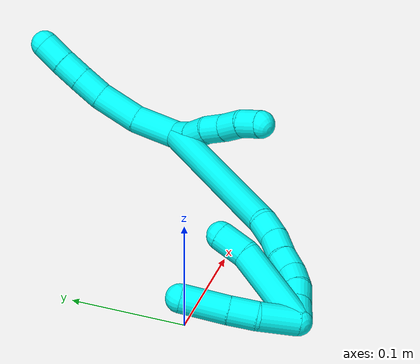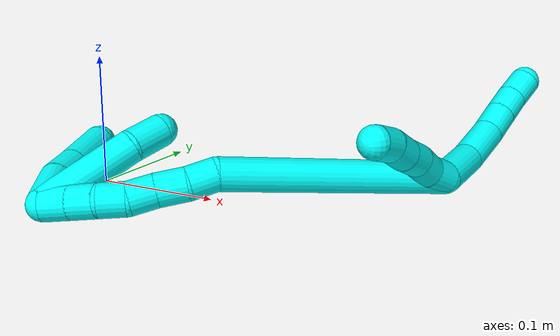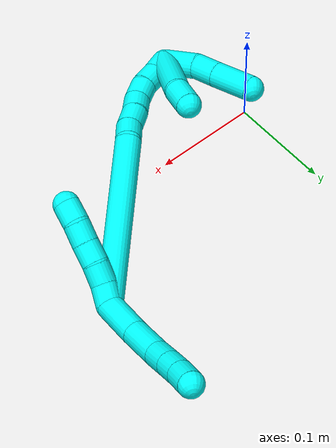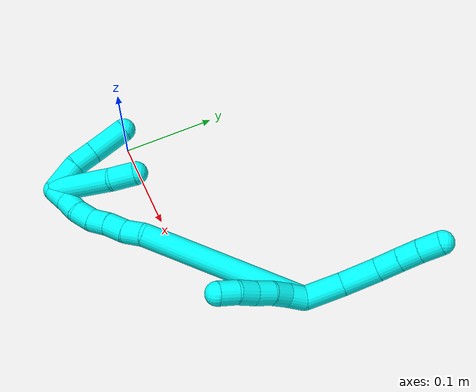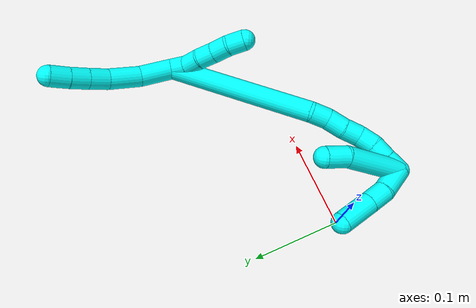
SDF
<sdf version="1.7">
 <world name="default">
  <model name="3">
   <static>0</static>
   <link name="3">
    <collision name="collision-cylinder-e_1_2_8">
     <pose>-0.006743 0.005226 0.018713 -0.272312 -0.33407 0.046191</pose>
     <geometry><cylinder><radius>0.0125</radius><length>0.041132</length></cylinder></geometry>
     <surface>
      <friction><ode><mu>1.16</mu><mu2>1.16</mu2><slip1>0</slip1><slip2>0</slip2></ode></friction>
      <contact><ode><kp>1e+06</kp><kd>1</kd><max_vel>0</max_vel><min_depth>0.001</min_depth></ode></contact>
     </surface>
    </collision>
    <visual name="visual-cylinder-e_1_2_8">
     <pose>-0.006743 0.005226 0.018713 -0.272312 -0.33407 0.046191</pose>
     <geometry><cylinder><radius>0.0125</radius><length>0.041132</length></cylinder></geometry>
     <material><ambient>0.003922 1 0.996078 1</ambient></material>
    </visual>
    <collision name="collision-cylinder-e_2_8_9">
     <pose>-0.022262 0.011925 0.054815 -0.084547 -0.465942 0.020073</pose>
     <geometry><cylinder><radius>0.0125</radius><length>0.039067</length></cylinder></geometry>
     <surface>
      <friction><ode><mu>1.16</mu><mu2>1.16</mu2><slip1>0</slip1><slip2>0</slip2></ode></friction>
      <contact><ode><kp>1e+06</kp><kd>1</kd><max_vel>0</max_vel><min_depth>0.001</min_depth></ode></contact>
     </surface>
    </collision>
    <visual name="visual-cylinder-e_2_8_9">
     <pose>-0.022262 0.011925 0.054815 -0.084547 -0.465942 0.020073</pose>
     <geometry><cylinder><radius>0.0125</radius><length>0.039067</length></cylinder></geometry>
     <material><ambient>0.003922 1 0.996078 1</ambient></material>
    </visual>
    <collision name="collision-cylinder-e_3_9_10">
     <pose>-0.037432 0.012646 0.082503 0.072984 -0.554401 -0.020774</pose>
     <geometry><cylinder><radius>0.0125</radius><length>0.024293</length></cylinder></geometry>
     <surface>
      <friction><ode><mu>1.16</mu><mu2>1.16</mu2><slip1>0</slip1><slip2>0</slip2></ode></friction>
      <contact><ode><kp>1e+06</kp><kd>1</kd><max_vel>0</max_vel><min_depth>0.001</min_depth></ode></contact>
     </surface>
    </collision>
    <visual name="visual-cylinder-e_3_9_10">
     <pose>-0.037432 0.012646 0.082503 0.072984 -0.554401 -0.020774</pose>
     <geometry><cylinder><radius>0.0125</radius><length>0.024293</length></cylinder></geometry>
     <material><ambient>0.003922 1 0.996078 1</ambient></material>
    </visual>
    <collision name="collision-cylinder-e_4_10_11">
     <pose>-0.049591 0.010991 0.102186 0.095789 -0.548806 -0.026984</pose>
     <geometry><cylinder><radius>0.0125</radius><length>0.022098</length></cylinder></geometry>
     <surface>
      <friction><ode><mu>1.16</mu><mu2>1.16</mu2><slip1>0</slip1><slip2>0</slip2></ode></friction>
      <contact><ode><kp>1e+06</kp><kd>1</kd><max_vel>0</max_vel><min_depth>0.001</min_depth></ode></contact>
     </surface>
    </collision>
    <visual name="visual-cylinder-e_4_10_11">
     <pose>-0.049591 0.010991 0.102186 0.095789 -0.548806 -0.026984</pose>
     <geometry><cylinder><radius>0.0125</radius><length>0.022098</length></cylinder></geometry>
     <material><ambient>0.003922 1 0.996078 1</ambient></material>
    </visual>
    <collision name="collision-cylinder-e_5_11_6">
     <pose>-0.06106 0.008636 0.121686 0.142717 -0.509101 -0.037193</pose>
     <geometry><cylinder><radius>0.0125</radius><length>0.02341</length></cylinder></geometry>
     <surface>
      <friction><ode><mu>1.16</mu><mu2>1.16</mu2><slip1>0</slip1><slip2>0</slip2></ode></friction>
      <contact><ode><kp>1e+06</kp><kd>1</kd><max_vel>0</max_vel><min_depth>0.001</min_depth></ode></contact>
     </surface>
    </collision>
    <visual name="visual-cylinder-e_5_11_6">
     <pose>-0.06106 0.008636 0.121686 0.142717 -0.509101 -0.037193</pose>
     <geometry><cylinder><radius>0.0125</radius><length>0.02341</length></cylinder></geometry>
     <material><ambient>0.003922 1 0.996078 1</ambient></material>
    </visual>
    <collision name="collision-cylinder-e_1_2_12">
     <pose>-0.003042 -0.003535 -0.008846 2.76138 -0.309075 -1.36106</pose>
     <geometry><cylinder><radius>0.0125</radius><length>0.02</length></cylinder></geometry>
     <surface>
      <friction><ode><mu>1.16</mu><mu2>1.16</mu2><slip1>0</slip1><slip2>0</slip2></ode></friction>
      <contact><ode><kp>1e+06</kp><kd>1</kd><max_vel>0</max_vel><min_depth>0.001</min_depth></ode></contact>
     </surface>
    </collision>
    <visual name="visual-cylinder-e_1_2_12">
     <pose>-0.003042 -0.003535 -0.008846 2.76138 -0.309075 -1.36106</pose>
     <geometry><cylinder><radius>0.0125</radius><length>0.02</length></cylinder></geometry>
     <material><ambient>0.003922 1 0.996078 1</ambient></material>
    </visual>
    <collision name="collision-cylinder-e_2_12_13">
     <pose>-0.009476 -0.012822 -0.025136 2.48377 -0.346144 -0.946734</pose>
     <geometry><cylinder><radius>0.0125</radius><length>0.02</length></cylinder></geometry>
     <surface>
      <friction><ode><mu>1.16</mu><mu2>1.16</mu2><slip1>0</slip1><slip2>0</slip2></ode></friction>
      <contact><ode><kp>1e+06</kp><kd>1</kd><max_vel>0</max_vel><min_depth>0.001</min_depth></ode></contact>
     </surface>
    </collision>
    <visual name="visual-cylinder-e_2_12_13">
     <pose>-0.009476 -0.012822 -0.025136 2.48377 -0.346144 -0.946734</pose>
     <geometry><cylinder><radius>0.0125</radius><length>0.02</length></cylinder></geometry>
     <material><ambient>0.003922 1 0.996078 1</ambient></material>
    </visual>
    <collision name="collision-cylinder-e_3_13_14">
     <pose>-0.014673 -0.023725 -0.040958 2.59032 -0.18137 -0.622146</pose>
     <geometry><cylinder><radius>0.0125</radius><length>0.02</length></cylinder></geometry>
     <surface>
      <friction><ode><mu>1.16</mu><mu2>1.16</mu2><slip1>0</slip1><slip2>0</slip2></ode></friction>
      <contact><ode><kp>1e+06</kp><kd>1</kd><max_vel>0</max_vel><min_depth>0.001</min_depth></ode></contact>
     </surface>
    </collision>
    <visual name="visual-cylinder-e_3_13_14">
     <pose>-0.014673 -0.023725 -0.040958 2.59032 -0.18137 -0.622146</pose>
     <geometry><cylinder><radius>0.0125</radius><length>0.02</length></cylinder></geometry>
     <material><ambient>0.003922 1 0.996078 1</ambient></material>
    </visual>
    <collision name="collision-cylinder-e_4_14_15">
     <pose>-0.019158 -0.034358 -0.05726 2.53635 -0.27144 -0.824646</pose>
     <geometry><cylinder><radius>0.0125</radius><length>0.02</length></cylinder></geometry>
     <surface>
      <friction><ode><mu>1.16</mu><mu2>1.16</mu2><slip1>0</slip1><slip2>0</slip2></ode></friction>
      <contact><ode><kp>1e+06</kp><kd>1</kd><max_vel>0</max_vel><min_depth>0.001</min_depth></ode></contact>
     </surface>
    </collision>
    <visual name="visual-cylinder-e_4_14_15">
     <pose>-0.019158 -0.034358 -0.05726 2.53635 -0.27144 -0.824646</pose>
     <geometry><cylinder><radius>0.0125</radius><length>0.02</length></cylinder></geometry>
     <material><ambient>0.003922 1 0.996078 1</ambient></material>
    </visual>
    <collision name="collision-cylinder-e_5_15_5">
     <pose>-0.022602 -0.044179 -0.074159 2.69132 -0.076374 -0.330602</pose>
     <geometry><cylinder><radius>0.0125</radius><length>0.02</length></cylinder></geometry>
     <surface>
      <friction><ode><mu>1.16</mu><mu2>1.16</mu2><slip1>0</slip1><slip2>0</slip2></ode></friction>
      <contact><ode><kp>1e+06</kp><kd>1</kd><max_vel>0</max_vel><min_depth>0.001</min_depth></ode></contact>
     </surface>
    </collision>
    <visual name="visual-cylinder-e_5_15_5">
     <pose>-0.022602 -0.044179 -0.074159 2.69132 -0.076374 -0.330602</pose>
     <geometry><cylinder><radius>0.0125</radius><length>0.02</length></cylinder></geometry>
     <material><ambient>0.003922 1 0.996078 1</ambient></material>
    </visual>
    <collision name="collision-cylinder-e_1_2_16">
     <pose>-0.025123 0.010772 -0.083941 -3.01397 -0.288575 2.31294</pose>
     <geometry><cylinder><radius>0.0125</radius><length>0.17656</length></cylinder></geometry>
     <surface>
      <friction><ode><mu>1.16</mu><mu2>1.16</mu2><slip1>0</slip1><slip2>0</slip2></ode></friction>
      <contact><ode><kp>1e+06</kp><kd>1</kd><max_vel>0</max_vel><min_depth>0.001</min_depth></ode></contact>
     </surface>
    </collision>
    <visual name="visual-cylinder-e_1_2_16">
     <pose>-0.025123 0.010772 -0.083941 -3.01397 -0.288575 2.31294</pose>
     <geometry><cylinder><radius>0.0125</radius><length>0.17656</length></cylinder></geometry>
     <material><ambient>0.003922 1 0.996078 1</ambient></material>
    </visual>
    <collision name="collision-cylinder-e_2_16_17">
     <pose>-0.050092 0.024548 -0.177952 -2.85162 0.014687 -0.100511</pose>
     <geometry><cylinder><radius>0.0125</radius><length>0.021018</length></cylinder></geometry>
     <surface>
      <friction><ode><mu>1.16</mu><mu2>1.16</mu2><slip1>0</slip1><slip2>0</slip2></ode></friction>
      <contact><ode><kp>1e+06</kp><kd>1</kd><max_vel>0</max_vel><min_depth>0.001</min_depth></ode></contact>
     </surface>
    </collision>
    <visual name="visual-cylinder-e_2_16_17">
     <pose>-0.050092 0.024548 -0.177952 -2.85162 0.014687 -0.100511</pose>
     <geometry><cylinder><radius>0.0125</radius><length>0.021018</length></cylinder></geometry>
     <material><ambient>0.003922 1 0.996078 1</ambient></material>
    </visual>
    <collision name="collision-cylinder-e_3_17_18">
     <pose>-0.051648 0.032007 -0.198061 -2.72394 -0.154408 0.700025</pose>
     <geometry><cylinder><radius>0.0125</radius><length>0.022233</length></cylinder></geometry>
     <surface>
      <friction><ode><mu>1.16</mu><mu2>1.16</mu2><slip1>0</slip1><slip2>0</slip2></ode></friction>
      <contact><ode><kp>1e+06</kp><kd>1</kd><max_vel>0</max_vel><min_depth>0.001</min_depth></ode></contact>
     </surface>
    </collision>
    <visual name="visual-cylinder-e_3_17_18">
     <pose>-0.051648 0.032007 -0.198061 -2.72394 -0.154408 0.700025</pose>
     <geometry><cylinder><radius>0.0125</radius><length>0.022233</length></cylinder></geometry>
     <material><ambient>0.003922 1 0.996078 1</ambient></material>
    </visual>
    <collision name="collision-cylinder-e_4_18_19">
     <pose>-0.053719 0.039735 -0.217574 -2.809 -0.036108 0.214324</pose>
     <geometry><cylinder><radius>0.0125</radius><length>0.020058</length></cylinder></geometry>
     <surface>
      <friction><ode><mu>1.16</mu><mu2>1.16</mu2><slip1>0</slip1><slip2>0</slip2></ode></friction>
      <contact><ode><kp>1e+06</kp><kd>1</kd><max_vel>0</max_vel><min_depth>0.001</min_depth></ode></contact>
     </surface>
    </collision>
    <visual name="visual-cylinder-e_4_18_19">
     <pose>-0.053719 0.039735 -0.217574 -2.809 -0.036108 0.214324</pose>
     <geometry><cylinder><radius>0.0125</radius><length>0.020058</length></cylinder></geometry>
     <material><ambient>0.003922 1 0.996078 1</ambient></material>
    </visual>
    <collision name="collision-cylinder-e_5_19_20">
     <pose>-0.05713 0.046834 -0.235818 -2.73014 -0.308375 1.28032</pose>
     <geometry><cylinder><radius>0.0125</radius><length>0.020087</length></cylinder></geometry>
     <surface>
      <friction><ode><mu>1.16</mu><mu2>1.16</mu2><slip1>0</slip1><slip2>0</slip2></ode></friction>
      <contact><ode><kp>1e+06</kp><kd>1</kd><max_vel>0</max_vel><min_depth>0.001</min_depth></ode></contact>
     </surface>
    </collision>
    <visual name="visual-cylinder-e_5_19_20">
     <pose>-0.05713 0.046834 -0.235818 -2.73014 -0.308375 1.28032</pose>
     <geometry><cylinder><radius>0.0125</radius><length>0.020087</length></cylinder></geometry>
     <material><ambient>0.003922 1 0.996078 1</ambient></material>
    </visual>
    <collision name="collision-cylinder-e_6_20_21">
     <pose>-0.063702 0.056514 -0.251898 -2.46642 -0.359996 0.956508</pose>
     <geometry><cylinder><radius>0.0125</radius><length>0.020008</length></cylinder></geometry>
     <surface>
      <friction><ode><mu>1.16</mu><mu2>1.16</mu2><slip1>0</slip1><slip2>0</slip2></ode></friction>
      <contact><ode><kp>1e+06</kp><kd>1</kd><max_vel>0</max_vel><min_depth>0.001</min_depth></ode></contact>
     </surface>
    </collision>
    <visual name="visual-cylinder-e_6_20_21">
     <pose>-0.063702 0.056514 -0.251898 -2.46642 -0.359996 0.956508</pose>
     <geometry><cylinder><radius>0.0125</radius><length>0.020008</length></cylinder></geometry>
     <material><ambient>0.003922 1 0.996078 1</ambient></material>
    </visual>
    <collision name="collision-cylinder-e_7_21_1">
     <pose>-0.070707 0.067774 -0.266888 -2.52814 -0.354857 1.03032</pose>
     <geometry><cylinder><radius>0.0125</radius><length>0.020037</length></cylinder></geometry>
     <surface>
      <friction><ode><mu>1.16</mu><mu2>1.16</mu2><slip1>0</slip1><slip2>0</slip2></ode></friction>
      <contact><ode><kp>1e+06</kp><kd>1</kd><max_vel>0</max_vel><min_depth>0.001</min_depth></ode></contact>
     </surface>
    </collision>
    <visual name="visual-cylinder-e_7_21_1">
     <pose>-0.070707 0.067774 -0.266888 -2.52814 -0.354857 1.03032</pose>
     <geometry><cylinder><radius>0.0125</radius><length>0.020037</length></cylinder></geometry>
     <material><ambient>0.003922 1 0.996078 1</ambient></material>
    </visual>
    <collision name="collision-cylinder-e_1_1_22">
     <pose>-0.085478 0.063927 -0.241108 0.269849 -0.314404 -0.043029</pose>
     <geometry><cylinder><radius>0.0125</radius><length>0.073014</length></cylinder></geometry>
     <surface>
      <friction><ode><mu>1.16</mu><mu2>1.16</mu2><slip1>0</slip1><slip2>0</slip2></ode></friction>
      <contact><ode><kp>1e+06</kp><kd>1</kd><max_vel>0</max_vel><min_depth>0.001</min_depth></ode></contact>
     </surface>
    </collision>
    <visual name="visual-cylinder-e_1_1_22">
     <pose>-0.085478 0.063927 -0.241108 0.269849 -0.314404 -0.043029</pose>
     <geometry><cylinder><radius>0.0125</radius><length>0.073014</length></cylinder></geometry>
     <material><ambient>0.003922 1 0.996078 1</ambient></material>
    </visual>
    <collision name="collision-cylinder-e_2_22_4">
     <pose>-0.100827 0.054905 -0.194781 -0.018125 -0.305581 0.002791</pose>
     <geometry><cylinder><radius>0.0125</radius><length>0.026986</length></cylinder></geometry>
     <surface>
      <friction><ode><mu>1.16</mu><mu2>1.16</mu2><slip1>0</slip1><slip2>0</slip2></ode></friction>
      <contact><ode><kp>1e+06</kp><kd>1</kd><max_vel>0</max_vel><min_depth>0.001</min_depth></ode></contact>
     </surface>
    </collision>
    <visual name="visual-cylinder-e_2_22_4">
     <pose>-0.100827 0.054905 -0.194781 -0.018125 -0.305581 0.002791</pose>
     <geometry><cylinder><radius>0.0125</radius><length>0.026986</length></cylinder></geometry>
     <material><ambient>0.003922 1 0.996078 1</ambient></material>
    </visual>
    <collision name="collision-cylinder-e_1_1_23">
     <pose>-0.086003 0.081863 -0.265173 -0.74593 -0.745708 0.30374</pose>
     <geometry><cylinder><radius>0.0125</radius><length>0.034827</length></cylinder></geometry>
     <surface>
      <friction><ode><mu>1.16</mu><mu2>1.16</mu2><slip1>0</slip1><slip2>0</slip2></ode></friction>
      <contact><ode><kp>1e+06</kp><kd>1</kd><max_vel>0</max_vel><min_depth>0.001</min_depth></ode></contact>
     </surface>
    </collision>
    <visual name="visual-cylinder-e_1_1_23">
     <pose>-0.086003 0.081863 -0.265173 -0.74593 -0.745708 0.30374</pose>
     <geometry><cylinder><radius>0.0125</radius><length>0.034827</length></cylinder></geometry>
     <material><ambient>0.003922 1 0.996078 1</ambient></material>
    </visual>
    <collision name="collision-cylinder-e_2_23_24">
     <pose>-0.103994 0.095936 -0.246796 -0.540574 -0.532685 0.150894</pose>
     <geometry><cylinder><radius>0.0125</radius><length>0.024321</length></cylinder></geometry>
     <surface>
      <friction><ode><mu>1.16</mu><mu2>1.16</mu2><slip1>0</slip1><slip2>0</slip2></ode></friction>
      <contact><ode><kp>1e+06</kp><kd>1</kd><max_vel>0</max_vel><min_depth>0.001</min_depth></ode></contact>
     </surface>
    </collision>
    <visual name="visual-cylinder-e_2_23_24">
     <pose>-0.103994 0.095936 -0.246796 -0.540574 -0.532685 0.150894</pose>
     <geometry><cylinder><radius>0.0125</radius><length>0.024321</length></cylinder></geometry>
     <material><ambient>0.003922 1 0.996078 1</ambient></material>
    </visual>
    <collision name="collision-cylinder-e_3_24_3">
     <pose>-0.121056 0.109605 -0.222643 -0.499507 -0.562136 0.147023</pose>
     <geometry><cylinder><radius>0.0125</radius><length>0.040851</length></cylinder></geometry>
     <surface>
      <friction><ode><mu>1.16</mu><mu2>1.16</mu2><slip1>0</slip1><slip2>0</slip2></ode></friction>
      <contact><ode><kp>1e+06</kp><kd>1</kd><max_vel>0</max_vel><min_depth>0.001</min_depth></ode></contact>
     </surface>
    </collision>
    <visual name="visual-cylinder-e_3_24_3">
     <pose>-0.121056 0.109605 -0.222643 -0.499507 -0.562136 0.147023</pose>
     <geometry><cylinder><radius>0.0125</radius><length>0.040851</length></cylinder></geometry>
     <material><ambient>0.003922 1 0.996078 1</ambient></material>
    </visual>
    <collision name="collision-sphere-3">
     <pose>-0.131943 0.117884 -0.207472 0 -0 0</pose>
     <geometry><sphere><radius>0.0125</radius></sphere></geometry>
     <surface>
      <friction><ode><mu>1.16</mu><mu2>1.16</mu2><slip1>0</slip1><slip2>0</slip2></ode></friction>
      <contact><ode><kp>1e+06</kp><kd>1</kd><max_vel>0</max_vel><min_depth>0.001</min_depth></ode></contact>
     </surface>
    </collision>
    <visual name="visual-sphere-3">
     <pose>-0.131943 0.117884 -0.207472 0 -0 0</pose>
     <geometry><sphere><radius>0.0125</radius></sphere></geometry>
     <material><ambient>0.003922 1 0.996078 1</ambient></material>
    </visual>
    <collision name="collision-sphere-24">
     <pose>-0.11017 0.101327 -0.237814 0 -0 0</pose>
     <geometry><sphere><radius>0.0125</radius></sphere></geometry>
     <surface>
      <friction><ode><mu>1.16</mu><mu2>1.16</mu2><slip1>0</slip1><slip2>0</slip2></ode></friction>
      <contact><ode><kp>1e+06</kp><kd>1</kd><max_vel>0</max_vel><min_depth>0.001</min_depth></ode></contact>
     </surface>
    </collision>
    <visual name="visual-sphere-24">
     <pose>-0.11017 0.101327 -0.237814 0 -0 0</pose>
     <geometry><sphere><radius>0.0125</radius></sphere></geometry>
     <material><ambient>0.003922 1 0.996078 1</ambient></material>
    </visual>
    <collision name="collision-sphere-23">
     <pose>-0.097818 0.090545 -0.255778 0 -0 0</pose>
     <geometry><sphere><radius>0.0125</radius></sphere></geometry>
     <surface>
      <friction><ode><mu>1.16</mu><mu2>1.16</mu2><slip1>0</slip1><slip2>0</slip2></ode></friction>
      <contact><ode><kp>1e+06</kp><kd>1</kd><max_vel>0</max_vel><min_depth>0.001</min_depth></ode></contact>
     </surface>
    </collision>
    <visual name="visual-sphere-23">
     <pose>-0.097818 0.090545 -0.255778 0 -0 0</pose>
     <geometry><sphere><radius>0.0125</radius></sphere></geometry>
     <material><ambient>0.003922 1 0.996078 1</ambient></material>
    </visual>
    <collision name="collision-sphere-4">
     <pose>-0.104886 0.055138 -0.181915 0 -0 0</pose>
     <geometry><sphere><radius>0.0125</radius></sphere></geometry>
     <surface>
      <friction><ode><mu>1.16</mu><mu2>1.16</mu2><slip1>0</slip1><slip2>0</slip2></ode></friction>
      <contact><ode><kp>1e+06</kp><kd>1</kd><max_vel>0</max_vel><min_depth>0.001</min_depth></ode></contact>
     </surface>
    </collision>
    <visual name="visual-sphere-4">
     <pose>-0.104886 0.055138 -0.181915 0 -0 0</pose>
     <geometry><sphere><radius>0.0125</radius></sphere></geometry>
     <material><ambient>0.003922 1 0.996078 1</ambient></material>
    </visual>
    <collision name="collision-sphere-22">
     <pose>-0.096768 0.054672 -0.207647 0 -0 0</pose>
     <geometry><sphere><radius>0.0125</radius></sphere></geometry>
     <surface>
      <friction><ode><mu>1.16</mu><mu2>1.16</mu2><slip1>0</slip1><slip2>0</slip2></ode></friction>
      <contact><ode><kp>1e+06</kp><kd>1</kd><max_vel>0</max_vel><min_depth>0.001</min_depth></ode></contact>
     </surface>
    </collision>
    <visual name="visual-sphere-22">
     <pose>-0.096768 0.054672 -0.207647 0 -0 0</pose>
     <geometry><sphere><radius>0.0125</radius></sphere></geometry>
     <material><ambient>0.003922 1 0.996078 1</ambient></material>
    </visual>
    <collision name="collision-sphere-1">
     <pose>-0.074188 0.073182 -0.274569 0 -0 0</pose>
     <geometry><sphere><radius>0.0125</radius></sphere></geometry>
     <surface>
      <friction><ode><mu>1.16</mu><mu2>1.16</mu2><slip1>0</slip1><slip2>0</slip2></ode></friction>
      <contact><ode><kp>1e+06</kp><kd>1</kd><max_vel>0</max_vel><min_depth>0.001</min_depth></ode></contact>
     </surface>
    </collision>
    <visual name="visual-sphere-1">
     <pose>-0.074188 0.073182 -0.274569 0 -0 0</pose>
     <geometry><sphere><radius>0.0125</radius></sphere></geometry>
     <material><ambient>0.003922 1 0.996078 1</ambient></material>
    </visual>
    <collision name="collision-sphere-21">
     <pose>-0.067226 0.062366 -0.259206 0 -0 0</pose>
     <geometry><sphere><radius>0.0125</radius></sphere></geometry>
     <surface>
      <friction><ode><mu>1.16</mu><mu2>1.16</mu2><slip1>0</slip1><slip2>0</slip2></ode></friction>
      <contact><ode><kp>1e+06</kp><kd>1</kd><max_vel>0</max_vel><min_depth>0.001</min_depth></ode></contact>
     </surface>
    </collision>
    <visual name="visual-sphere-21">
     <pose>-0.067226 0.062366 -0.259206 0 -0 0</pose>
     <geometry><sphere><radius>0.0125</radius></sphere></geometry>
     <material><ambient>0.003922 1 0.996078 1</ambient></material>
    </visual>
    <collision name="collision-sphere-6">
     <pose>-0.066765 0.007182 0.131803 0 -0 0</pose>
     <geometry><sphere><radius>0.0125</radius></sphere></geometry>
     <surface>
      <friction><ode><mu>1.16</mu><mu2>1.16</mu2><slip1>0</slip1><slip2>0</slip2></ode></friction>
      <contact><ode><kp>1e+06</kp><kd>1</kd><max_vel>0</max_vel><min_depth>0.001</min_depth></ode></contact>
     </surface>
    </collision>
    <visual name="visual-sphere-6">
     <pose>-0.066765 0.007182 0.131803 0 -0 0</pose>
     <geometry><sphere><radius>0.0125</radius></sphere></geometry>
     <material><ambient>0.003922 1 0.996078 1</ambient></material>
    </visual>
    <collision name="collision-sphere-11">
     <pose>-0.055355 0.010089 0.11157 0 -0 0</pose>
     <geometry><sphere><radius>0.0125</radius></sphere></geometry>
     <surface>
      <friction><ode><mu>1.16</mu><mu2>1.16</mu2><slip1>0</slip1><slip2>0</slip2></ode></friction>
      <contact><ode><kp>1e+06</kp><kd>1</kd><max_vel>0</max_vel><min_depth>0.001</min_depth></ode></contact>
     </surface>
    </collision>
    <visual name="visual-sphere-11">
     <pose>-0.055355 0.010089 0.11157 0 -0 0</pose>
     <geometry><sphere><radius>0.0125</radius></sphere></geometry>
     <material><ambient>0.003922 1 0.996078 1</ambient></material>
    </visual>
    <collision name="collision-sphere-10">
     <pose>-0.043827 0.011892 0.092803 0 -0 0</pose>
     <geometry><sphere><radius>0.0125</radius></sphere></geometry>
     <surface>
      <friction><ode><mu>1.16</mu><mu2>1.16</mu2><slip1>0</slip1><slip2>0</slip2></ode></friction>
      <contact><ode><kp>1e+06</kp><kd>1</kd><max_vel>0</max_vel><min_depth>0.001</min_depth></ode></contact>
     </surface>
    </collision>
    <visual name="visual-sphere-10">
     <pose>-0.043827 0.011892 0.092803 0 -0 0</pose>
     <geometry><sphere><radius>0.0125</radius></sphere></geometry>
     <material><ambient>0.003922 1 0.996078 1</ambient></material>
    </visual>
    <collision name="collision-sphere-9">
     <pose>-0.031038 0.013399 0.072204 0 -0 0</pose>
     <geometry><sphere><radius>0.0125</radius></sphere></geometry>
     <surface>
      <friction><ode><mu>1.16</mu><mu2>1.16</mu2><slip1>0</slip1><slip2>0</slip2></ode></friction>
      <contact><ode><kp>1e+06</kp><kd>1</kd><max_vel>0</max_vel><min_depth>0.001</min_depth></ode></contact>
     </surface>
    </collision>
    <visual name="visual-sphere-9">
     <pose>-0.031038 0.013399 0.072204 0 -0 0</pose>
     <geometry><sphere><radius>0.0125</radius></sphere></geometry>
     <material><ambient>0.003922 1 0.996078 1</ambient></material>
    </visual>
    <collision name="collision-sphere-2">
     <geometry><sphere><radius>0.0125</radius></sphere></geometry>
     <surface>
      <friction><ode><mu>1.16</mu><mu2>1.16</mu2><slip1>0</slip1><slip2>0</slip2></ode></friction>
      <contact><ode><kp>1e+06</kp><kd>1</kd><max_vel>0</max_vel><min_depth>0.001</min_depth></ode></contact>
     </surface>
    </collision>
    <visual name="visual-sphere-2">
     <geometry><sphere><radius>0.0125</radius></sphere></geometry>
     <material><ambient>0.003922 1 0.996078 1</ambient></material>
    </visual>
    <collision name="collision-sphere-19">
     <pose>-0.054081 0.043007 -0.227047 0 -0 0</pose>
     <geometry><sphere><radius>0.0125</radius></sphere></geometry>
     <surface>
      <friction><ode><mu>1.16</mu><mu2>1.16</mu2><slip1>0</slip1><slip2>0</slip2></ode></friction>
      <contact><ode><kp>1e+06</kp><kd>1</kd><max_vel>0</max_vel><min_depth>0.001</min_depth></ode></contact>
     </surface>
    </collision>
    <visual name="visual-sphere-19">
     <pose>-0.054081 0.043007 -0.227047 0 -0 0</pose>
     <geometry><sphere><radius>0.0125</radius></sphere></geometry>
     <material><ambient>0.003922 1 0.996078 1</ambient></material>
    </visual>
    <collision name="collision-sphere-8">
     <pose>-0.013487 0.010451 0.037426 0 -0 0</pose>
     <geometry><sphere><radius>0.0125</radius></sphere></geometry>
     <surface>
      <friction><ode><mu>1.16</mu><mu2>1.16</mu2><slip1>0</slip1><slip2>0</slip2></ode></friction>
      <contact><ode><kp>1e+06</kp><kd>1</kd><max_vel>0</max_vel><min_depth>0.001</min_depth></ode></contact>
     </surface>
    </collision>
    <visual name="visual-sphere-8">
     <pose>-0.013487 0.010451 0.037426 0 -0 0</pose>
     <geometry><sphere><radius>0.0125</radius></sphere></geometry>
     <material><ambient>0.003922 1 0.996078 1</ambient></material>
    </visual>
    <collision name="collision-sphere-12">
     <pose>-0.006084 -0.007071 -0.017692 0 -0 0</pose>
     <geometry><sphere><radius>0.0125</radius></sphere></geometry>
     <surface>
      <friction><ode><mu>1.16</mu><mu2>1.16</mu2><slip1>0</slip1><slip2>0</slip2></ode></friction>
      <contact><ode><kp>1e+06</kp><kd>1</kd><max_vel>0</max_vel><min_depth>0.001</min_depth></ode></contact>
     </surface>
    </collision>
    <visual name="visual-sphere-12">
     <pose>-0.006084 -0.007071 -0.017692 0 -0 0</pose>
     <geometry><sphere><radius>0.0125</radius></sphere></geometry>
     <material><ambient>0.003922 1 0.996078 1</ambient></material>
    </visual>
    <collision name="collision-sphere-13">
     <pose>-0.012869 -0.018573 -0.03258 0 -0 0</pose>
     <geometry><sphere><radius>0.0125</radius></sphere></geometry>
     <surface>
      <friction><ode><mu>1.16</mu><mu2>1.16</mu2><slip1>0</slip1><slip2>0</slip2></ode></friction>
      <contact><ode><kp>1e+06</kp><kd>1</kd><max_vel>0</max_vel><min_depth>0.001</min_depth></ode></contact>
     </surface>
    </collision>
    <visual name="visual-sphere-13">
     <pose>-0.012869 -0.018573 -0.03258 0 -0 0</pose>
     <geometry><sphere><radius>0.0125</radius></sphere></geometry>
     <material><ambient>0.003922 1 0.996078 1</ambient></material>
    </visual>
    <collision name="collision-sphere-14">
     <pose>-0.016477 -0.028877 -0.049337 0 -0 0</pose>
     <geometry><sphere><radius>0.0125</radius></sphere></geometry>
     <surface>
      <friction><ode><mu>1.16</mu><mu2>1.16</mu2><slip1>0</slip1><slip2>0</slip2></ode></friction>
      <contact><ode><kp>1e+06</kp><kd>1</kd><max_vel>0</max_vel><min_depth>0.001</min_depth></ode></contact>
     </surface>
    </collision>
    <visual name="visual-sphere-14">
     <pose>-0.016477 -0.028877 -0.049337 0 -0 0</pose>
     <geometry><sphere><radius>0.0125</radius></sphere></geometry>
     <material><ambient>0.003922 1 0.996078 1</ambient></material>
    </visual>
    <collision name="collision-sphere-15">
     <pose>-0.021839 -0.039839 -0.065182 0 -0 0</pose>
     <geometry><sphere><radius>0.0125</radius></sphere></geometry>
     <surface>
      <friction><ode><mu>1.16</mu><mu2>1.16</mu2><slip1>0</slip1><slip2>0</slip2></ode></friction>
      <contact><ode><kp>1e+06</kp><kd>1</kd><max_vel>0</max_vel><min_depth>0.001</min_depth></ode></contact>
     </surface>
    </collision>
    <visual name="visual-sphere-15">
     <pose>-0.021839 -0.039839 -0.065182 0 -0 0</pose>
     <geometry><sphere><radius>0.0125</radius></sphere></geometry>
     <material><ambient>0.003922 1 0.996078 1</ambient></material>
    </visual>
    <collision name="collision-sphere-5">
     <pose>-0.023365 -0.048518 -0.083136 0 -0 0</pose>
     <geometry><sphere><radius>0.0125</radius></sphere></geometry>
     <surface>
      <friction><ode><mu>1.16</mu><mu2>1.16</mu2><slip1>0</slip1><slip2>0</slip2></ode></friction>
      <contact><ode><kp>1e+06</kp><kd>1</kd><max_vel>0</max_vel><min_depth>0.001</min_depth></ode></contact>
     </surface>
    </collision>
    <visual name="visual-sphere-5">
     <pose>-0.023365 -0.048518 -0.083136 0 -0 0</pose>
     <geometry><sphere><radius>0.0125</radius></sphere></geometry>
     <material><ambient>0.003922 1 0.996078 1</ambient></material>
    </visual>
    <collision name="collision-sphere-16">
     <pose>-0.050247 0.021543 -0.167883 0 -0 0</pose>
     <geometry><sphere><radius>0.0125</radius></sphere></geometry>
     <surface>
      <friction><ode><mu>1.16</mu><mu2>1.16</mu2><slip1>0</slip1><slip2>0</slip2></ode></friction>
      <contact><ode><kp>1e+06</kp><kd>1</kd><max_vel>0</max_vel><min_depth>0.001</min_depth></ode></contact>
     </surface>
    </collision>
    <visual name="visual-sphere-16">
     <pose>-0.050247 0.021543 -0.167883 0 -0 0</pose>
     <geometry><sphere><radius>0.0125</radius></sphere></geometry>
     <material><ambient>0.003922 1 0.996078 1</ambient></material>
    </visual>
    <collision name="collision-sphere-17">
     <pose>-0.049938 0.027552 -0.188021 0 -0 0</pose>
     <geometry><sphere><radius>0.0125</radius></sphere></geometry>
     <surface>
      <friction><ode><mu>1.16</mu><mu2>1.16</mu2><slip1>0</slip1><slip2>0</slip2></ode></friction>
      <contact><ode><kp>1e+06</kp><kd>1</kd><max_vel>0</max_vel><min_depth>0.001</min_depth></ode></contact>
     </surface>
    </collision>
    <visual name="visual-sphere-17">
     <pose>-0.049938 0.027552 -0.188021 0 -0 0</pose>
     <geometry><sphere><radius>0.0125</radius></sphere></geometry>
     <material><ambient>0.003922 1 0.996078 1</ambient></material>
    </visual>
    <collision name="collision-sphere-18">
     <pose>-0.053357 0.036462 -0.208101 0 -0 0</pose>
     <geometry><sphere><radius>0.0125</radius></sphere></geometry>
     <surface>
      <friction><ode><mu>1.16</mu><mu2>1.16</mu2><slip1>0</slip1><slip2>0</slip2></ode></friction>
      <contact><ode><kp>1e+06</kp><kd>1</kd><max_vel>0</max_vel><min_depth>0.001</min_depth></ode></contact>
     </surface>
    </collision>
    <visual name="visual-sphere-18">
     <pose>-0.053357 0.036462 -0.208101 0 -0 0</pose>
     <geometry><sphere><radius>0.0125</radius></sphere></geometry>
     <material><ambient>0.003922 1 0.996078 1</ambient></material>
    </visual>
    <collision name="collision-sphere-20">
     <pose>-0.060178 0.050662 -0.244589 0 -0 0</pose>
     <geometry><sphere><radius>0.0125</radius></sphere></geometry>
     <surface>
      <friction><ode><mu>1.16</mu><mu2>1.16</mu2><slip1>0</slip1><slip2>0</slip2></ode></friction>
      <contact><ode><kp>1e+06</kp><kd>1</kd><max_vel>0</max_vel><min_depth>0.001</min_depth></ode></contact>
     </surface>
    </collision>
    <visual name="visual-sphere-20">
     <pose>-0.060178 0.050662 -0.244589 0 -0 0</pose>
     <geometry><sphere><radius>0.0125</radius></sphere></geometry>
     <material><ambient>0.003922 1 0.996078 1</ambient></material>
    </visual>
    <inertial>
     <pose>-0.049261 0.029637 -0.111668 0 -0 0</pose>
     <mass>0.75</mass>
     <inertia><ixx>8.5e-05</ixx><ixy>0</ixy><ixz>0</ixz><iyy>0.00072</iyy><iyz>0</iyz><izz>0.000103</izz></inertia>
    </inertial>
   </link>
   <pose>0.248403 0.097253 0.012345 -1.49683 0.892691 -0.456488</pose>
  </model>
 </world>
</sdf>
